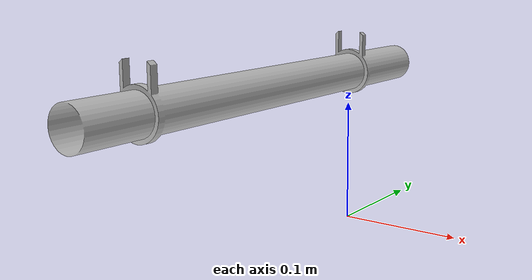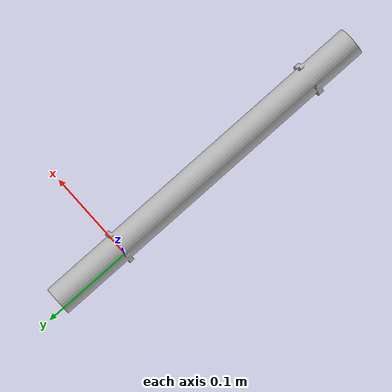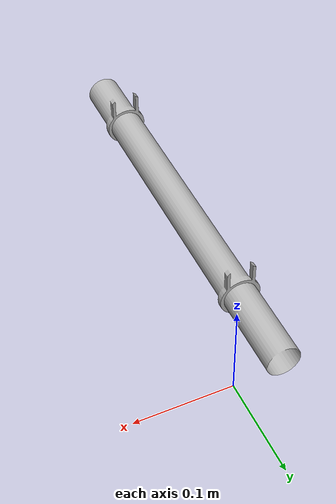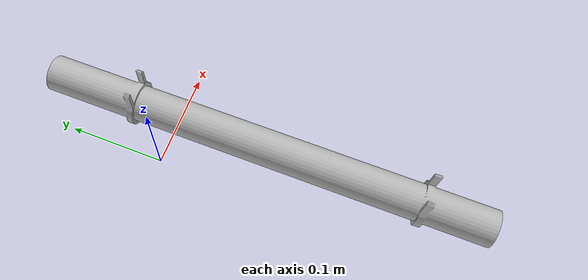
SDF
<?xml version='1.0'?>
<sdf version="1.6">
<model name="RustPipe">
  <pose>0 0 0 0 0 0</pose>
  <static>false</static>
    <link name="link">
		<pose>-0.0 -0.8 -0.7 1.57 0 0</pose>
      <inertial>
        <mass>0.003</mass>
        <inertia>
          <ixx>0.16667</ixx>
          <ixy>0.0</ixy>
          <ixz>0.0</ixz>
          <iyy>0.16667</iyy>
          <iyz>0.0</iyz>
          <izz>0.16667</izz>
        </inertia>
      </inertial>
      <collision name="collision">
        <geometry>
          <mesh>
            <uri>model://RustPipe/meshes/RustPipe.dae</uri>
            <scale>0.1 0.1 0.1</scale>
          </mesh>
        </geometry>
      <max_contacts>10</max_contacts>
        <surface>
			<contact>
              <ode/>
            </contact>
            <bounce/>
           <friction>
              <ode>
              <mu>0.3</mu>
              <mu2>100</mu2>
              </ode>
           </friction>
      </surface>
      </collision>
      <visual name="visual">
        <geometry>
          <mesh>
            <uri>model://RustPipe/meshes/RustPipe.dae</uri>
            <scale>0.1 0.1 0.1</scale>
          </mesh>
        </geometry>
      </visual>
      <self_collide>0</self_collide>
        <kinematic>0</kinematic>
        <gravity>1</gravity>
    </link>
  </model>
</sdf>
